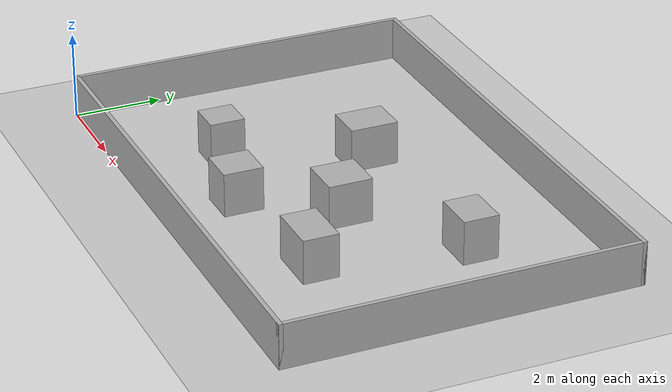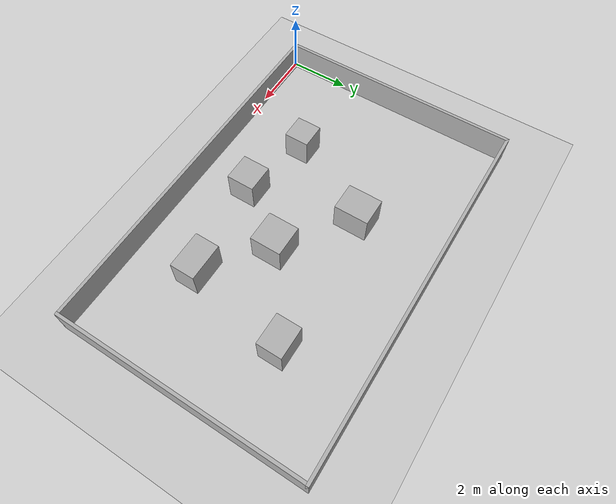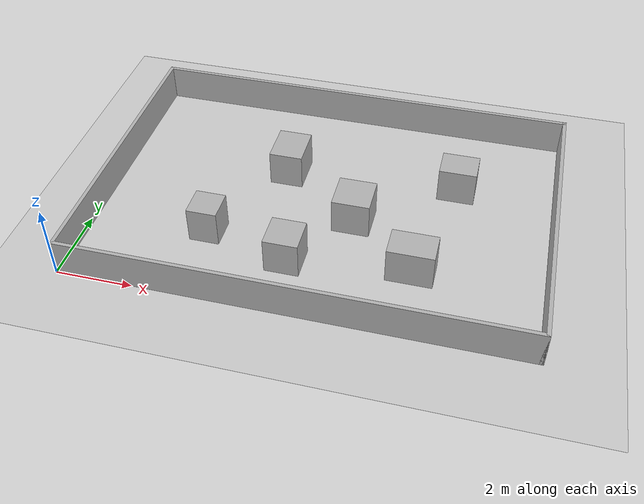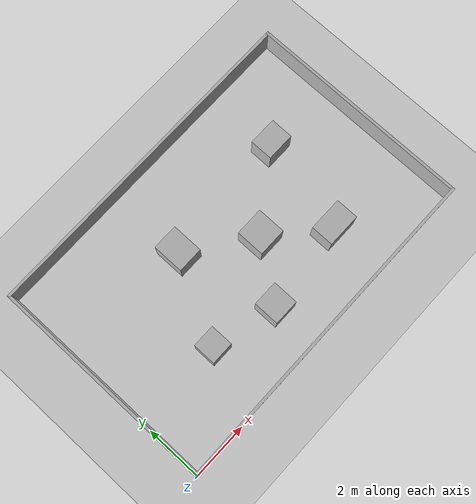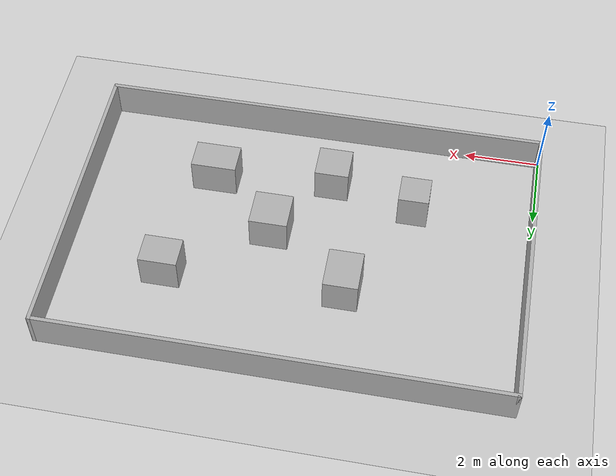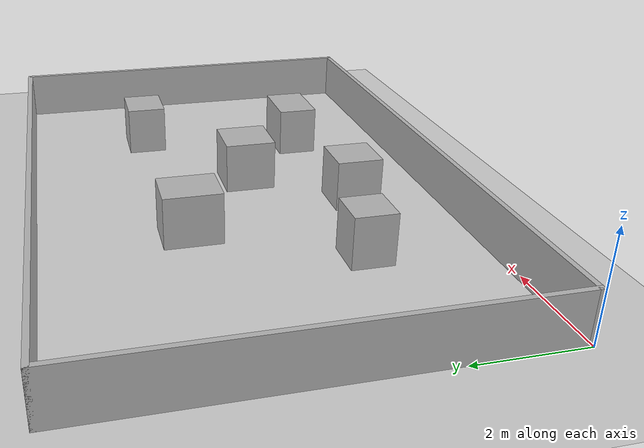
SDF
<?xml version="1.0" ?>
<sdf version="1.7">
  <world name="clutter">
    <gravity>0 0 -9.8</gravity>
    <include><uri>model://ground_plane</uri></include>
    <include><uri>model://sun</uri></include>

    <model name="box_0">
      <static>true</static>
      <pose>6.000 0.050 0.500 0 0 0</pose>
      <link name="link">
        <collision name="collision">
          <geometry><box><size>12.000 0.100 1.000</size></box></geometry>
        </collision>
        <visual name="visual">
          <geometry><box><size>12.000 0.100 1.000</size></box></geometry>
          <material><ambient>0.7 0.7 0.7 1</ambient><diffuse>0.7 0.7 0.7 1</diffuse></material>
        </visual>
      </link>
    </model>

    <model name="box_1">
      <static>true</static>
      <pose>6.000 7.950 0.500 0 0 0</pose>
      <link name="link">
        <collision name="collision">
          <geometry><box><size>12.000 0.100 1.000</size></box></geometry>
        </collision>
        <visual name="visual">
          <geometry><box><size>12.000 0.100 1.000</size></box></geometry>
          <material><ambient>0.7 0.7 0.7 1</ambient><diffuse>0.7 0.7 0.7 1</diffuse></material>
        </visual>
      </link>
    </model>

    <model name="box_2">
      <static>true</static>
      <pose>0.050 4.000 0.500 0 0 0</pose>
      <link name="link">
        <collision name="collision">
          <geometry><box><size>0.100 8.000 1.000</size></box></geometry>
        </collision>
        <visual name="visual">
          <geometry><box><size>0.100 8.000 1.000</size></box></geometry>
          <material><ambient>0.7 0.7 0.7 1</ambient><diffuse>0.7 0.7 0.7 1</diffuse></material>
        </visual>
      </link>
    </model>

    <model name="box_3">
      <static>true</static>
      <pose>11.950 4.000 0.500 0 0 0</pose>
      <link name="link">
        <collision name="collision">
          <geometry><box><size>0.100 8.000 1.000</size></box></geometry>
        </collision>
        <visual name="visual">
          <geometry><box><size>0.100 8.000 1.000</size></box></geometry>
          <material><ambient>0.7 0.7 0.7 1</ambient><diffuse>0.7 0.7 0.7 1</diffuse></material>
        </visual>
      </link>
    </model>

    <model name="box_4">
      <static>true</static>
      <pose>3.200 2.300 0.500 0 0 0</pose>
      <link name="link">
        <collision name="collision">
          <geometry><box><size>0.800 0.800 1.000</size></box></geometry>
        </collision>
        <visual name="visual">
          <geometry><box><size>0.800 0.800 1.000</size></box></geometry>
          <material><ambient>0.7 0.7 0.7 1</ambient><diffuse>0.7 0.7 0.7 1</diffuse></material>
        </visual>
      </link>
    </model>

    <model name="box_5">
      <static>true</static>
      <pose>5.450 1.750 0.500 0 0 0</pose>
      <link name="link">
        <collision name="collision">
          <geometry><box><size>0.900 0.900 1.000</size></box></geometry>
        </collision>
        <visual name="visual">
          <geometry><box><size>0.900 0.900 1.000</size></box></geometry>
          <material><ambient>0.7 0.7 0.7 1</ambient><diffuse>0.7 0.7 0.7 1</diffuse></material>
        </visual>
      </link>
    </model>

    <model name="box_6">
      <static>true</static>
      <pose>6.800 3.600 0.500 0 0 0</pose>
      <link name="link">
        <collision name="collision">
          <geometry><box><size>1.000 1.000 1.000</size></box></geometry>
        </collision>
        <visual name="visual">
          <geometry><box><size>1.000 1.000 1.000</size></box></geometry>
          <material><ambient>0.7 0.7 0.7 1</ambient><diffuse>0.7 0.7 0.7 1</diffuse></material>
        </visual>
      </link>
    </model>

    <model name="box_7">
      <static>true</static>
      <pose>4.650 5.150 0.500 0 0 0</pose>
      <link name="link">
        <collision name="collision">
          <geometry><box><size>0.900 1.100 1.000</size></box></geometry>
        </collision>
        <visual name="visual">
          <geometry><box><size>0.900 1.100 1.000</size></box></geometry>
          <material><ambient>0.7 0.7 0.7 1</ambient><diffuse>0.7 0.7 0.7 1</diffuse></material>
        </visual>
      </link>
    </model>

    <model name="box_8">
      <static>true</static>
      <pose>8.600 2.100 0.500 0 0 0</pose>
      <link name="link">
        <collision name="collision">
          <geometry><box><size>1.200 0.800 1.000</size></box></geometry>
        </collision>
        <visual name="visual">
          <geometry><box><size>1.200 0.800 1.000</size></box></geometry>
          <material><ambient>0.7 0.7 0.7 1</ambient><diffuse>0.7 0.7 0.7 1</diffuse></material>
        </visual>
      </link>
    </model>

    <model name="box_9">
      <static>true</static>
      <pose>9.300 5.400 0.500 0 0 0</pose>
      <link name="link">
        <collision name="collision">
          <geometry><box><size>1.000 0.800 1.000</size></box></geometry>
        </collision>
        <visual name="visual">
          <geometry><box><size>1.000 0.800 1.000</size></box></geometry>
          <material><ambient>0.7 0.7 0.7 1</ambient><diffuse>0.7 0.7 0.7 1</diffuse></material>
        </visual>
      </link>
    </model>
  </world>
</sdf>
